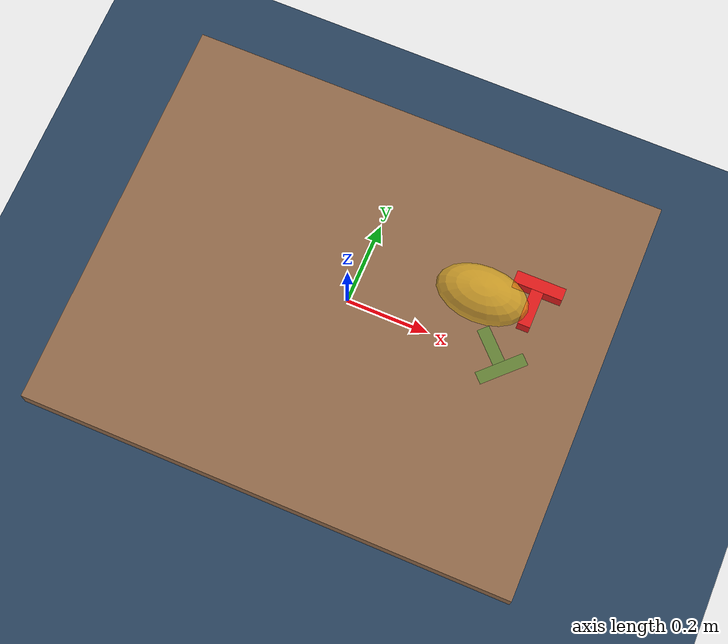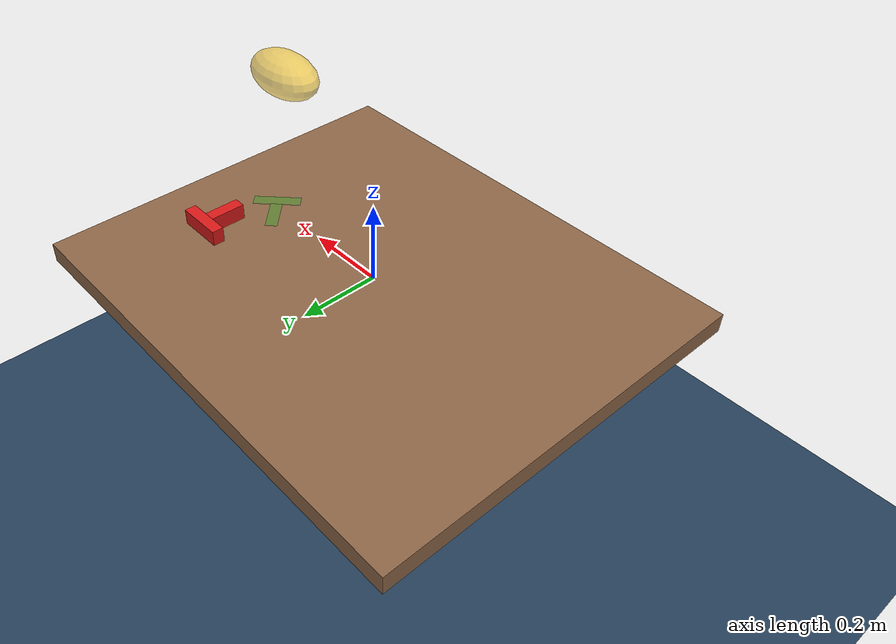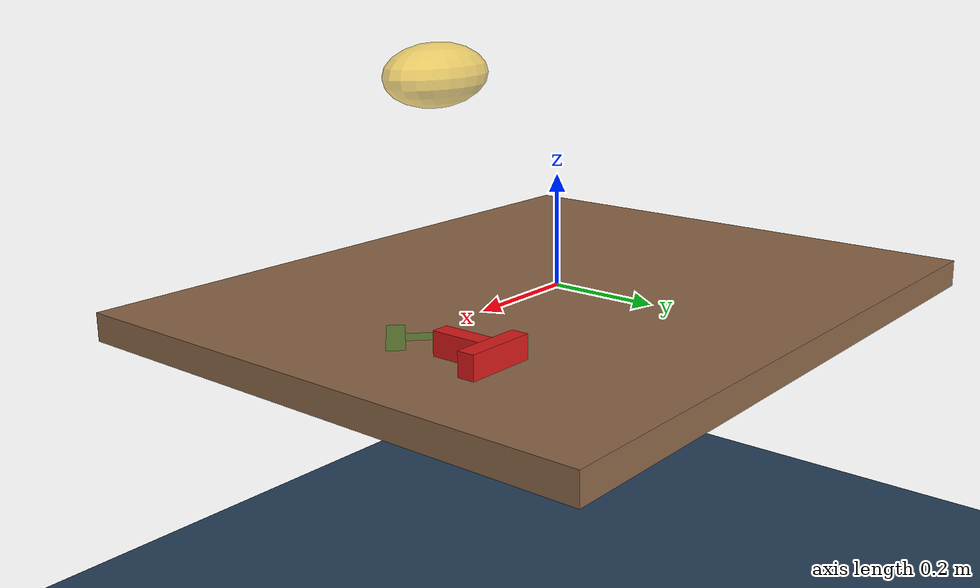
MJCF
<mujoco model="lira world">

  <visual>
    <headlight diffuse="0.6 0.6 0.6" ambient="0.1 0.1 0.1" specular="0 0 0"/>
    <rgba haze="0.15 0.25 0.35 1"/>
    <global azimuth="120" elevation="-20"/>
  </visual>

  <asset>
    <texture type="skybox" builtin="gradient" rgb1="0.3 0.5 0.7" rgb2="0 0 0" width="512" height="3072"/>
    <texture type="2d" name="groundplane" builtin="checker" mark="edge" rgb1="0.2 0.3 0.4" rgb2="0.1 0.2 0.3"
      markrgb="0.8 0.8 0.8" width="300" height="300"/>
    <material name="groundplane" texture="groundplane" texuniform="true" texrepeat="5 5" reflectance="0.2"/>
    <material name="table_mat" rgba="0.55 0.4 0.28 1"/>
    <material name="tblock_mat" rgba="0.85 0.1 0.1 1"/>
    <material name="target_mat" rgba="0.1 0.7 0.1 0.35"/>
    <material name="obstacle_mat" rgba="0.95 0.75 0.1 0.6"/>
  </asset>

  <worldbody>
    <light pos="0 0 1.5" dir="0 0 -1" directional="true"/>
    <geom name="floor" size="0 0 0.05" pos="0 0 -0.75" type="plane" material="groundplane"/>

    <!-- Tabletop: 1.2m x 1.0m x 0.05m thick, top surface at z=0 -->
    <body name="table" pos="0 0 -0.025">
      <geom name="table_top" type="box" size="0.6 0.5 0.025" material="table_mat"/>
    </body>

    <body name="t_block" pos="0.4 0.21 0.02" quat="0 0 0 1">
      <freejoint/>
      <!-- density 4000 kg/m^3 -> 1.0 kg in all (MuJoCo's default 1000 made it 0.25 kg, light enough to fly off the rod) -->
      <geom name="t_bar" type="box" size="0.06 0.015 0.02" pos="0 0.015 0" density="4000" material="tblock_mat"/>
      <geom name="t_stem" type="box" size="0.015 0.045 0.02" pos="0 0.075 0" density="4000" material="tblock_mat"/>
    </body>

    <body name="goal" pos="0.4 -0.025 0.001" quat="0.9238795 0 0 0.3826834">
      <geom name="goal_bar" type="box" size="0.06 0.015 0.001" pos="0 0.015 0" material="target_mat"
        contype="0" conaffinity="0"/>
      <geom name="goal_stem" type="box" size="0.015 0.045 0.001" pos="0 0.075 0" material="target_mat"
        contype="0" conaffinity="0"/>
    </body>

    <body name="obstacle" mocap="true" pos="0.3 0 0.4">
      <geom name="obstacle" type="ellipsoid" size="0.10 0.06 0.05" material="obstacle_mat"/>
    </body>
  </worldbody>
</mujoco>
